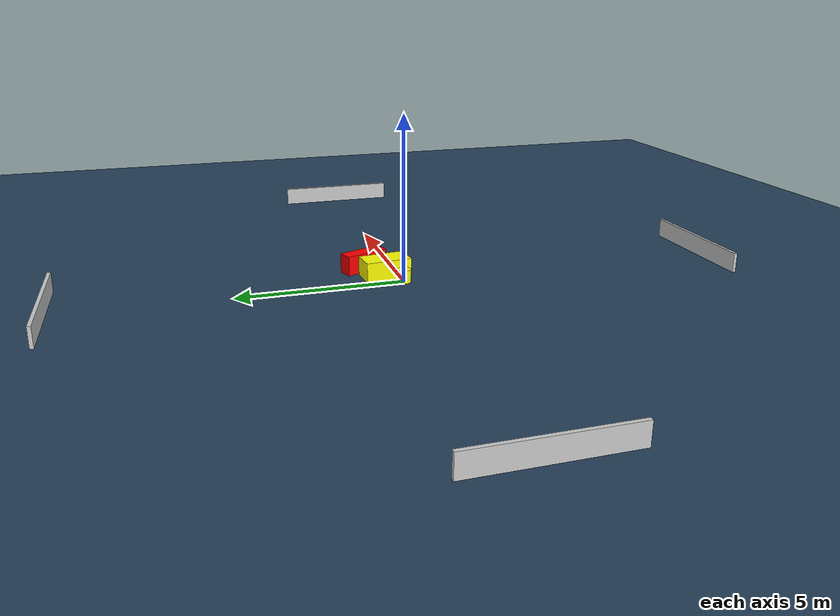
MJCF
<?xml version="1.0" ?>
<mujoco model="generated_environment">
  <option timestep="0.01" integrator="RK4" cone="elliptic"/>
  <default>
    <geom density="1"/>
  </default>
  <asset>
    <texture builtin="gradient" height="3072" name="skybox" rgb1="0.3 0.5 0.7" rgb2="0 0 0" type="skybox" width="512"/>
    <texture builtin="checker" height="300" name="groundplane" rgb1="0.2 0.3 0.4" rgb2="0.1 0.2 0.3" type="2d" width="300"/>
    <material name="groundplane" reflectance="0.2" texrepeat="5 5" texture="groundplane"/>
  </asset>
  <worldbody>
    <light dir="0 0 -1" directional="true" pos="0 0 1.5"/>
    <geom condim="3" friction="0.5 0.005 0.001" material="groundplane" name="floor" pos="0 0 0" size="0 0 0.05" type="plane"/>
    <body name="walls">
      <geom name="wall_1" condim="4" pos="-10.0 0.0 0.3" rgba="0.800000011920929 0.800000011920929 0.800000011920929 1.0" size="0.05 2.0 0.3" type="box"/>
      <geom name="wall_2" condim="4" pos="10.0 0.0 0.3" rgba="0.800000011920929 0.800000011920929 0.800000011920929 1.0" size="0.05 2.0 0.3" type="box"/>
      <geom name="wall_3" condim="4" pos="0.0 -10.0 0.3" rgba="0.800000011920929 0.800000011920929 0.800000011920929 1.0" size="2.0 0.05 0.3" type="box"/>
      <geom name="wall_4" condim="4" pos="0.0 10.0 0.3" rgba="0.800000011920929 0.800000011920929 0.800000011920929 1.0" size="2.0 0.05 0.3" type="box"/>
    </body>
    <body name="robot">
      <joint name="joint_x" type="slide" pos="0 0 0" axis="1 0 0"/>
      <joint name="joint_y" type="slide" pos="0 0 0" axis="0 1 0"/>
      <geom name="robot" type="cylinder" pos="0.0 0.0 0.2" size="0.2 0.2 0.0" mass="5.0" friction="1.0 0.005 0.0001" condim="4" rgba="1.0 1.0 0.0 1.0"/>
    </body>
    <body name="obstacle_1_movable">
      <geom name="obstacle_1_movable" condim="4" pos="0.6335376471855878 0.4197113240890389 0.3" euler="0 0 96.33734067849316" friction="0.0 0.005 0.001" rgba="1.0 1.0 0.0 1.0" size="0.7046766615679521 0.378488476799302 0.3" type="box" mass="0.1"/>
      <joint type="free"/>
    </body>
    <body name="obstacle_2_static">
      <geom name="obstacle_2_static" condim="4" pos="1.3988606843352267 0.9074013338597336 0.3" euler="0 0 112.13176353004485" friction="0.0 0.005 0.001" rgba="1.0 0.0 0.0 1.0" size="0.6941651309488448 0.22000474043448495 0.3" type="box"/>
    </body>
  </worldbody>
  <actuator>
    <motor name="actuator_x" joint="joint_x" gear="1" ctrlrange="-1 1"/>
    <motor name="actuator_y" joint="joint_y" gear="1" ctrlrange="-1 1"/>
  </actuator>
</mujoco>
